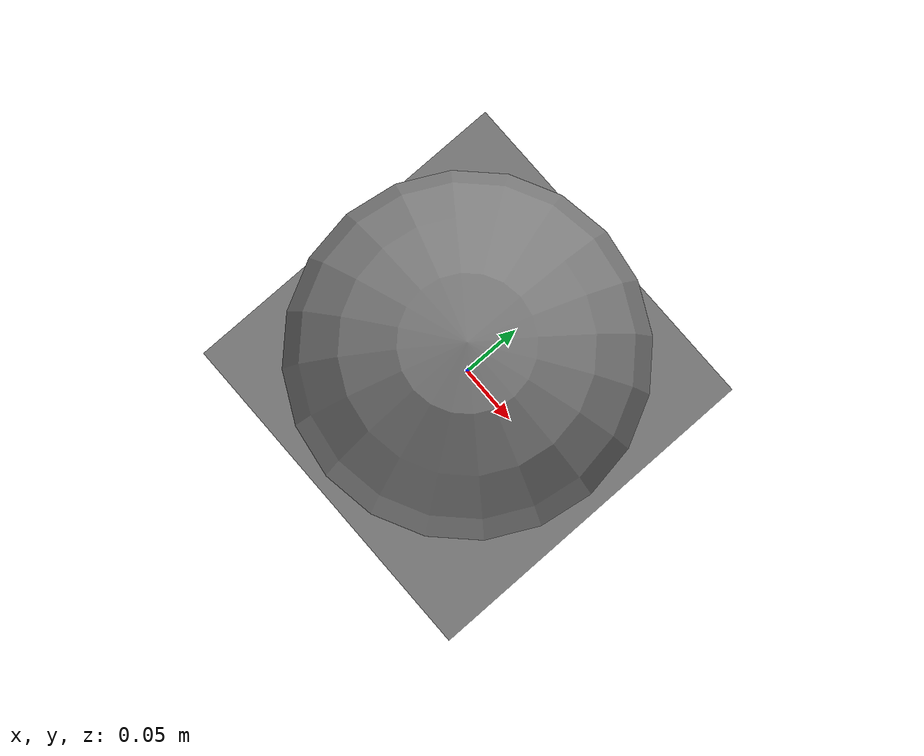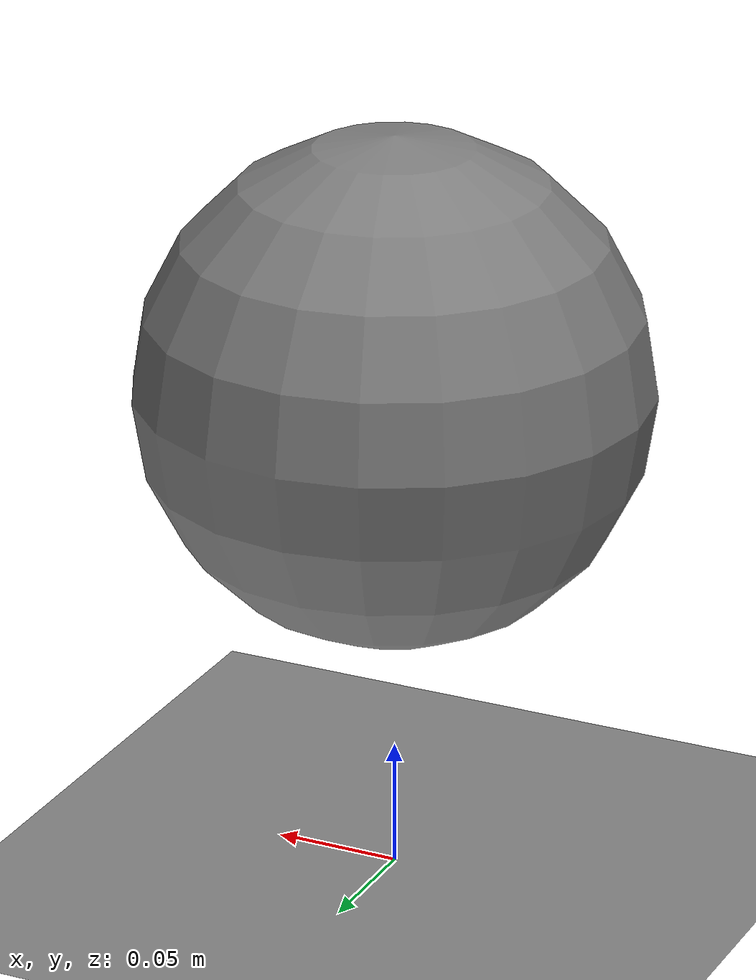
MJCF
<mujoco model="sensor_sleep">
        <option gravity="0 0 -9.81" timestep="0.002" sleep_tolerance="0.1">
            <flag sleep="enable"/>
        </option>
        <worldbody>
            <geom type="plane" size="5 5 0.1" solref="0.005 1.5"/>
            <body name="ball" pos="0 0 0.2">
                <freejoint name="ball_free"/>
                <geom type="sphere" size="0.1" mass="1.0" solref="0.005 1.5"/>
                <site name="ball_site" pos="0 0 0"/>
            </body>
        </worldbody>
        <sensor>
            <framepos objtype="site" objname="ball_site"/>
        </sensor>
    </mujoco>
